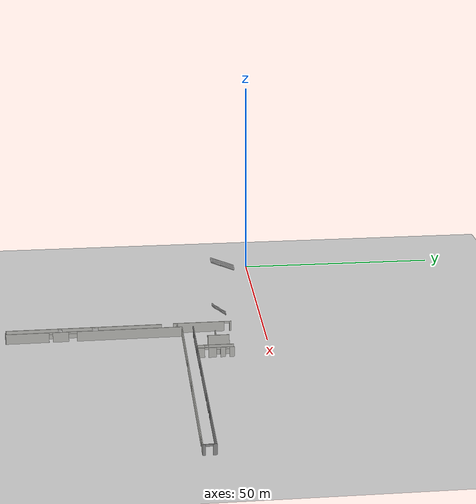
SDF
<sdf version="1.6">
 <world name="default">
  <model name="ground_plane">
   <static>1</static>
   <link name="link">
    <collision name="collision">
     <geometry><plane><normal>0 0 1</normal><size>100 100</size></plane></geometry>
     <surface><friction><ode><mu>100</mu><mu2>50</mu2></ode></friction></surface>
    </collision>
    <visual name="visual">
     <cast_shadows>0</cast_shadows>
     <geometry><plane><normal>0 0 1</normal><size>100 100</size></plane></geometry>
     <material>
      <script><uri>file://media/materials/scripts/gazebo.material</uri><name>Gazebo/Grey</name></script>
     </material>
    </visual>
   </link>
  </model>
  <model name="hospital_LG_detailed">
   <pose>51.8521 -11.413 0 0 -0 0</pose>
   <link name="Stairs_0">
    <visual name="Stairs_0_Visual_0">
     <pose>-51.7603 7.83355 0.083333 0 -0 0</pose>
     <geometry><box><size>3.86299 0.42395 0.166667</size></box></geometry>
     <material>
      <script><uri>file://media/materials/scripts/gazebo.material</uri><name>Gazebo/Grey</name></script>
      <ambient>1 1 1 1</ambient>
     </material>
     <meta><layer>0</layer></meta>
    </visual>
    <collision name="Stairs_0_Collision_0">
     <geometry><box><size>3.86299 0.42395 0.166667</size></box></geometry>
     <pose>-51.7603 7.83355 0.083333 0 -0 0</pose>
    </collision>
    <visual name="Stairs_0_Visual_1">
     <pose>-51.7603 7.4096 0.25 0 -0 0</pose>
     <geometry><box><size>3.86299 0.42395 0.166667</size></box></geometry>
     <material>
      <script><uri>file://media/materials/scripts/gazebo.material</uri><name>Gazebo/Grey</name></script>
      <ambient>1 1 1 1</ambient>
     </material>
     <meta><layer>0</layer></meta>
    </visual>
    <collision name="Stairs_0_Collision_1">
     <geometry><box><size>3.86299 0.42395 0.166667</size></box></geometry>
     <pose>-51.7603 7.4096 0.25 0 -0 0</pose>
    </collision>
    <visual name="Stairs_0_Visual_2">
     <pose>-51.7603 6.98565 0.416667 0 -0 0</pose>
     <geometry><box><size>3.86299 0.42395 0.166667</size></box></geometry>
     <material>
      <script><uri>file://media/materials/scripts/gazebo.material</uri><name>Gazebo/Grey</name></script>
      <ambient>1 1 1 1</ambient>
     </material>
     <meta><layer>0</layer></meta>
    </visual>
    <collision name="Stairs_0_Collision_2">
     <geometry><box><size>3.86299 0.42395 0.166667</size></box></geometry>
     <pose>-51.7603 6.98565 0.416667 0 -0 0</pose>
    </collision>
    <visual name="Stairs_0_Visual_3">
     <pose>-51.7603 6.5617 0.583333 0 -0 0</pose>
     <geometry><box><size>3.86299 0.42395 0.166667</size></box></geometry>
     <material>
      <script><uri>file://media/materials/scripts/gazebo.material</uri><name>Gazebo/Grey</name></script>
      <ambient>1 1 1 1</ambient>
     </material>
     <meta><layer>0</layer></meta>
    </visual>
    <collision name="Stairs_0_Collision_3">
     <geometry><box><size>3.86299 0.42395 0.166667</size></box></geometry>
     <pose>-51.7603 6.5617 0.583333 0 -0 0</pose>
    </collision>
    <visual name="Stairs_0_Visual_4">
     <pose>-51.7603 6.13775 0.75 0 -0 0</pose>
     <geometry><box><size>3.86299 0.42395 0.166667</size></box></geometry>
     <material>
      <script><uri>file://media/materials/scripts/gazebo.material</uri><name>Gazebo/Grey</name></script>
      <ambient>1 1 1 1</ambient>
     </material>
     <meta><layer>0</layer></meta>
    </visual>
    <collision name="Stairs_0_Collision_4">
     <geometry><box><size>3.86299 0.42395 0.166667</size></box></geometry>
     <pose>-51.7603 6.13775 0.75 0 -0 0</pose>
    </collision>
    <visual name="Stairs_0_Visual_5">
     <pose>-51.7603 5.7138 0.916667 0 -0 0</pose>
     <geometry><box><size>3.86299 0.42395 0.166667</size></box></geometry>
     <material>
      <script><uri>file://media/materials/scripts/gazebo.material</uri><name>Gazebo/Grey</name></script>
      <ambient>1 1 1 1</ambient>
     </material>
     <meta><layer>0</layer></meta>
    </visual>
    <collision name="Stairs_0_Collision_5">
     <geometry><box><size>3.86299 0.42395 0.166667</size></box></geometry>
     <pose>-51.7603 5.7138 0.916667 0 -0 0</pose>
    </collision>
    <visual name="Stairs_0_Visual_6">
     <pose>-51.7603 5.28985 1.08333 0 -0 0</pose>
     <geometry><box><size>3.86299 0.42395 0.166667</size></box></geometry>
     <material>
      <script><uri>file://media/materials/scripts/gazebo.material</uri><name>Gazebo/Grey</name></script>
      <ambient>1 1 1 1</ambient>
     </material>
     <meta><layer>0</layer></meta>
    </visual>
    <collision name="Stairs_0_Collision_6">
     <geometry><box><size>3.86299 0.42395 0.166667</size></box></geometry>
     <pose>-51.7603 5.28985 1.08333 0 -0 0</pose>
    </collision>
    <visual name="Stairs_0_Visual_7">
     <pose>-51.7603 4.8659 1.25 0 -0 0</pose>
     <geometry><box><size>3.86299 0.42395 0.166667</size></box></geometry>
     <material>
      <script><uri>file://media/materials/scripts/gazebo.material</uri><name>Gazebo/Grey</name></script>
      <ambient>1 1 1 1</ambient>
     </material>
     <meta><layer>0</layer></meta>
    </visual>
    <collision name="Stairs_0_Collision_7">
     <geometry><box><size>3.86299 0.42395 0.166667</size></box></geometry>
     <pose>-51.7603 4.8659 1.25 0 -0 0</pose>
    </collision>
    <visual name="Stairs_0_Visual_8">
     <pose>-51.7603 4.44195 1.41667 0 -0 0</pose>
     <geometry><box><size>3.86299 0.42395 0.166667</size></box></geometry>
     <material>
      <script><uri>file://media/materials/scripts/gazebo.material</uri><name>Gazebo/Grey</name></script>
      <ambient>1 1 1 1</ambient>
     </material>
     <meta><layer>0</layer></meta>
    </visual>
    <collision name="Stairs_0_Collision_8">
     <geometry><box><size>3.86299 0.42395 0.166667</size></box></geometry>
     <pose>-51.7603 4.44195 1.41667 0 -0 0</pose>
    </collision>
    <visual name="Stairs_0_Visual_9">
     <pose>-51.7603 4.018 1.58333 0 -0 0</pose>
     <geometry><box><size>3.86299 0.42395 0.166667</size></box></geometry>
     <material>
      <script><uri>file://media/materials/scripts/gazebo.material</uri><name>Gazebo/Grey</name></script>
      <ambient>1 1 1 1</ambient>
     </material>
     <meta><layer>0</layer></meta>
    </visual>
    <collision name="Stairs_0_Collision_9">
     <geometry><box><size>3.86299 0.42395 0.166667</size></box></geometry>
     <pose>-51.7603 4.018 1.58333 0 -0 0</pose>
    </collision>
    <visual name="Stairs_0_Visual_10">
     <pose>-51.7603 3.59405 1.75 0 -0 0</pose>
     <geometry><box><size>3.86299 0.42395 0.166667</size></box></geometry>
     <material>
      <script><uri>file://media/materials/scripts/gazebo.material</uri><name>Gazebo/Grey</name></script>
      <ambient>1 1 1 1</ambient>
     </material>
     <meta><layer>0</layer></meta>
    </visual>
    <collision name="Stairs_0_Collision_10">
     <geometry><box><size>3.86299 0.42395 0.166667</size></box></geometry>
     <pose>-51.7603 3.59405 1.75 0 -0 0</pose>
    </collision>
    <visual name="Stairs_0_Visual_11">
     <pose>-51.7603 3.1701 1.91667 0 -0 0</pose>
     <geometry><box><size>3.86299 0.42395 0.166667</size></box></geometry>
     <material>
      <script><uri>file://media/materials/scripts/gazebo.material</uri><name>Gazebo/Grey</name></script>
      <ambient>1 1 1 1</ambient>
     </material>
     <meta><layer>0</layer></meta>
    </visual>
    <collision name="Stairs_0_Collision_11">
     <geometry><box><size>3.86299 0.42395 0.166667</size></box></geometry>
     <pose>-51.7603 3.1701 1.91667 0 -0 0</pose>
    </collision>
    <visual name="Stairs_0_Visual_12">
     <pose>-51.7603 2.74615 2.08333 0 -0 0</pose>
     <geometry><box><size>3.86299 0.42395 0.166667</size></box></geometry>
     <material>
      <script><uri>file://media/materials/scripts/gazebo.material</uri><name>Gazebo/Grey</name></script>
      <ambient>1 1 1 1</ambient>
     </material>
     <meta><layer>0</layer></meta>
    </visual>
    <collision name="Stairs_0_Collision_12">
     <geometry><box><size>3.86299 0.42395 0.166667</size></box></geometry>
     <pose>-51.7603 2.74615 2.08333 0 -0 0</pose>
    </collision>
    <visual name="Stairs_0_Visual_13">
     <pose>-51.7603 2.3222 2.25 0 -0 0</pose>
     <geometry><box><size>3.86299 0.42395 0.166667</size></box></geometry>
     <material>
      <script><uri>file://media/materials/scripts/gazebo.material</uri><name>Gazebo/Grey</name></script>
      <ambient>1 1 1 1</ambient>
     </material>
     <meta><layer>0</layer></meta>
    </visual>
    <collision name="Stairs_0_Collision_13">
     <geometry><box><size>3.86299 0.42395 0.166667</size></box></geometry>
     <pose>-51.7603 2.3222 2.25 0 -0 0</pose>
    </collision>
    <visual name="Stairs_0_Visual_14">
     <pose>-51.7603 1.89825 2.41667 0 -0 0</pose>
     <geometry><box><size>3.86299 0.42395 0.166667</size></box></geometry>
     <material>
      <script><uri>file://media/materials/scripts/gazebo.material</uri><name>Gazebo/Grey</name></script>
      <ambient>1 1 1 1</ambient>
     </material>
     <meta><layer>0</layer></meta>
    </visual>
    <collision name="Stairs_0_Collision_14">
     <geometry><box><size>3.86299 0.42395 0.166667</size></box></geometry>
     <pose>-51.7603 1.89825 2.41667 0 -0 0</pose>
    </collision>
   </link>
   <link name="Stairs_1">
    <visual name="Stairs_1_Visual_0">
     <pose>-19.4385 2.82184 0.083333 0 -0 0</pose>
     <geometry><box><size>1.94936 0.233333 0.166667</size></box></geometry>
     <material>
      <script><uri>file://media/materials/scripts/gazebo.material</uri><name>Gazebo/Grey</name></script>
      <ambient>1 1 1 1</ambient>
     </material>
     <meta><layer>0</layer></meta>
    </visual>
    <collision name="Stairs_1_Collision_0">
     <geometry><box><size>1.94936 0.233333 0.166667</size></box></geometry>
     <pose>-19.4385 2.82184 0.083333 0 -0 0</pose>
    </collision>
    <visual name="Stairs_1_Visual_1">
     <pose>-19.4385 2.58851 0.25 0 -0 0</pose>
     <geometry><box><size>1.94936 0.233333 0.166667</size></box></geometry>
     <material>
      <script><uri>file://media/materials/scripts/gazebo.material</uri><name>Gazebo/Grey</name></script>
      <ambient>1 1 1 1</ambient>
     </material>
     <meta><layer>0</layer></meta>
    </visual>
    <collision name="Stairs_1_Collision_1">
     <geometry><box><size>1.94936 0.233333 0.166667</size></box></geometry>
     <pose>-19.4385 2.58851 0.25 0 -0 0</pose>
    </collision>
    <visual name="Stairs_1_Visual_2">
     <pose>-19.4385 2.35518 0.416667 0 -0 0</pose>
     <geometry><box><size>1.94936 0.233333 0.166667</size></box></geometry>
     <material>
      <script><uri>file://media/materials/scripts/gazebo.material</uri><name>Gazebo/Grey</name></script>
      <ambient>1 1 1 1</ambient>
     </material>
     <meta><layer>0</layer></meta>
    </visual>
    <collision name="Stairs_1_Collision_2">
     <geometry><box><size>1.94936 0.233333 0.166667</size></box></geometry>
     <pose>-19.4385 2.35518 0.416667 0 -0 0</pose>
    </collision>
    <visual name="Stairs_1_Visual_3">
     <pose>-19.4385 2.12184 0.583333 0 -0 0</pose>
     <geometry><box><size>1.94936 0.233333 0.166667</size></box></geometry>
     <material>
      <script><uri>file://media/materials/scripts/gazebo.material</uri><name>Gazebo/Grey</name></script>
      <ambient>1 1 1 1</ambient>
     </material>
     <meta><layer>0</layer></meta>
    </visual>
    <collision name="Stairs_1_Collision_3">
     <geometry><box><size>1.94936 0.233333 0.166667</size></box></geometry>
     <pose>-19.4385 2.12184 0.583333 0 -0 0</pose>
    </collision>
    <visual name="Stairs_1_Visual_4">
     <pose>-19.4385 1.88851 0.75 0 -0 0</pose>
     <geometry><box><size>1.94936 0.233333 0.166667</size></box></geometry>
     <material>
      <script><uri>file://media/materials/scripts/gazebo.material</uri><name>Gazebo/Grey</name></script>
      <ambient>1 1 1 1</ambient>
     </material>
     <meta><layer>0</layer></meta>
    </visual>
    <collision name="Stairs_1_Collision_4">
     <geometry><box><size>1.94936 0.233333 0.166667</size></box></geometry>
     <pose>-19.4385 1.88851 0.75 0 -0 0</pose>
    </collision>
    <visual name="Stairs_1_Visual_5">
     <pose>-19.4385 1.65518 0.916667 0 -0 0</pose>
     <geometry><box><size>1.94936 0.233333 0.166667</size></box></geometry>
     <material>
      <script><uri>file://media/materials/scripts/gazebo.material</uri><name>Gazebo/Grey</name></script>
      <ambient>1 1 1 1</ambient>
     </material>
     <meta><layer>0</layer></meta>
    </visual>
    <collision name="Stairs_1_Collision_5">
     <geometry><box><size>1.94936 0.233333 0.166667</size></box></geometry>
     <pose>-19.4385 1.65518 0.916667 0 -0 0</pose>
    </collision>
    <visual name="Stairs_1_Visual_6">
     <pose>-19.4385 1.42184 1.08333 0 -0 0</pose>
     <geometry><box><size>1.94936 0.233333 0.166667</size></box></geometry>
     <material>
      <script><uri>file://media/materials/scripts/gazebo.material</uri><name>Gazebo/Grey</name></script>
      <ambient>1 1 1 1</ambient>
     </material>
     <meta><layer>0</layer></meta>
    </visual>
    <collision name="Stairs_1_Collision_6">
     <geometry><box><size>1.94936 0.233333 0.166667</size></box></geometry>
     <pose>-19.4385 1.42184 1.08333 0 -0 0</pose>
    </collision>
    <visual name="Stairs_1_Visual_7">
     <pose>-19.4385 1.18851 1.25 0 -0 0</pose>
     <geometry><box><size>1.94936 0.233333 0.166667</size></box></geometry>
     <material>
      <script><uri>file://media/materials/scripts/gazebo.material</uri><name>Gazebo/Grey</name></script>
      <ambient>1 1 1 1</ambient>
     </material>
     <meta><layer>0</layer></meta>
    </visual>
    <collision name="Stairs_1_Collision_7">
     <geometry><box><size>1.94936 0.233333 0.166667</size></box></geometry>
     <pose>-19.4385 1.18851 1.25 0 -0 0</pose>
    </collision>
    <visual name="Stairs_1_Visual_8">
     <pose>-19.4385 0.955175 1.41667 0 -0 0</pose>
     <geometry><box><size>1.94936 0.233333 0.166667</size></box></geometry>
     <material>
      <script><uri>file://media/materials/scripts/gazebo.material</uri><name>Gazebo/Grey</name></script>
      <ambient>1 1 1 1</ambient>
     </material>
     <meta><layer>0</layer></meta>
    </visual>
    <collision name="Stairs_1_Collision_8">
     <geometry><box><size>1.94936 0.233333 0.166667</size></box></geometry>
     <pose>-19.4385 0.955175 1.41667 0 -0 0</pose>
    </collision>
    <visual name="Stairs_1_Visual_9">
     <pose>-19.4385 0.721842 1.58333 0 -0 0</pose>
     <geometry><box><size>1.94936 0.233333 0.166667</size></box></geometry>
     <material>
      <script><uri>file://media/materials/scripts/gazebo.material</uri><name>Gazebo/Grey</name></script>
      <ambient>1 1 1 1</ambient>
     </material>
     <meta><layer>0</layer></meta>
    </visual>
    <collision name="Stairs_1_Collision_9">
     <geometry><box><size>1.94936 0.233333 0.166667</size></box></geometry>
     <pose>-19.4385 0.721842 1.58333 0 -0 0</pose>
    </collision>
    <visual name="Stairs_1_Visual_10">
     <pose>-19.4385 0.488509 1.75 0 -0 0</pose>
     <geometry><box><size>1.94936 0.233333 0.166667</size></box></geometry>
     <material>
      <script><uri>file://media/materials/scripts/gazebo.material</uri><name>Gazebo/Grey</name></script>
      <ambient>1 1 1 1</ambient>
     </material>
     <meta><layer>0</layer></meta>
    </visual>
    <collision name="Stairs_1_Collision_10">
     <geometry><box><size>1.94936 0.233333 0.166667</size></box></geometry>
     <pose>-19.4385 0.488509 1.75 0 -0 0</pose>
    </collision>
    <visual name="Stairs_1_Visual_11">
     <pose>-19.4385 0.255176 1.91667 0 -0 0</pose>
     <geometry><box><size>1.94936 0.233333 0.166667</size></box></geometry>
     <material>
      <script><uri>file://media/materials/scripts/gazebo.material</uri><name>Gazebo/Grey</name></script>
      <ambient>1 1 1 1</ambient>
     </material>
     <meta><layer>0</layer></meta>
    </visual>
    <collision name="Stairs_1_Collision_11">
     <geometry><box><size>1.94936 0.233333 0.166667</size></box></geometry>
     <pose>-19.4385 0.255176 1.91667 0 -0 0</pose>
    </collision>
    <visual name="Stairs_1_Visual_12">
     <pose>-19.4385 0.021842 2.08333 0 -0 0</pose>
     <geometry><box><size>1.94936 0.233333 0.166667</size></box></geometry>
     <material>
      <script><uri>file://media/materials/scripts/gazebo.material</uri><name>Gazebo/Grey</name></script>
      <ambient>1 1 1 1</ambient>
     </material>
     <meta><layer>0</layer></meta>
    </visual>
    <collision name="Stairs_1_Collision_12">
     <geometry><box><size>1.94936 0.233333 0.166667</size></box></geometry>
     <pose>-19.4385 0.021842 2.08333 0 -0 0</pose>
    </collision>
    <visual name="Stairs_1_Visual_13">
     <pose>-19.4385 -0.211491 2.25 0 -0 0</pose>
     <geometry><box><size>1.94936 0.233333 0.166667</size></box></geometry>
     <material>
      <script><uri>file://media/materials/scripts/gazebo.material</uri><name>Gazebo/Grey</name></script>
      <ambient>1 1 1 1</ambient>
     </material>
     <meta><layer>0</layer></meta>
    </visual>
    <collision name="Stairs_1_Collision_13">
     <geometry><box><size>1.94936 0.233333 0.166667</size></box></geometry>
     <pose>-19.4385 -0.211491 2.25 0 -0 0</pose>
    </collision>
    <visual name="Stairs_1_Visual_14">
     <pose>-19.4385 -0.444824 2.41667 0 -0 0</pose>
     <geometry><box><size>1.94936 0.233333 0.166667</size></box></geometry>
     <material>
      <script><uri>file://media/materials/scripts/gazebo.material</uri><name>Gazebo/Grey</name></script>
      <ambient>1 1 1 1</ambient>
     </material>
     <meta><layer>0</layer></meta>
    </visual>
    <collision name="Stairs_1_Collision_14">
     <geometry><box><size>1.94936 0.233333 0.166667</size></box></geometry>
     <pose>-19.4385 -0.444824 2.41667 0 -0 0</pose>
    </collision>
   </link>
   <link name="Wall_24">
    <pose>24.123 -5.8189 0 0 -0 0.011089</pose>
    <visual name="Wall_24_Visual_0">
     <pose>-29.4346 0 1.25 0 -0 0</pose>
     <geometry><box><size>1.79536 0.15 2.5</size></box></geometry>
     <material>
      <script><uri>file://media/materials/scripts/gazebo.material</uri><name>Gazebo/Grey</name></script>
      <ambient>1 1 1 1</ambient>
     </material>
     <meta><layer>0</layer></meta>
    </visual>
    <collision name="Wall_24_Collision_0">
     <geometry><box><size>1.79536 0.15 2.5</size></box></geometry>
     <pose>-29.4346 0 1.25 0 -0 0</pose>
    </collision>
    <visual name="Wall_24_Visual_1">
     <pose>-22.8489 0 1.25 0 -0 0</pose>
     <geometry><box><size>8.29926 0.15 2.5</size></box></geometry>
     <material>
      <script><uri>file://media/materials/scripts/gazebo.material</uri><name>Gazebo/Grey</name></script>
      <ambient>1 1 1 1</ambient>
     </material>
     <meta><layer>0</layer></meta>
    </visual>
    <collision name="Wall_24_Collision_1">
     <geometry><box><size>8.29926 0.15 2.5</size></box></geometry>
     <pose>-22.8489 0 1.25 0 -0 0</pose>
    </collision>
    <visual name="Wall_24_Visual_2">
     <pose>-14.1199 0 1.25 0 -0 0</pose>
     <geometry><box><size>6.55203 0.15 2.5</size></box></geometry>
     <material>
      <script><uri>file://media/materials/scripts/gazebo.material</uri><name>Gazebo/Grey</name></script>
      <ambient>1 1 1 1</ambient>
     </material>
     <meta><layer>0</layer></meta>
    </visual>
    <collision name="Wall_24_Collision_2">
     <geometry><box><size>6.55203 0.15 2.5</size></box></geometry>
     <pose>-14.1199 0 1.25 0 -0 0</pose>
    </collision>
    <visual name="Wall_24_Visual_3">
     <pose>-8.19155 0 1.25 0 -0 0</pose>
     <geometry><box><size>2.4034 0.15 2.5</size></box></geometry>
     <material>
      <script><uri>file://media/materials/scripts/gazebo.material</uri><name>Gazebo/Grey</name></script>
      <ambient>1 1 1 1</ambient>
     </material>
     <meta><layer>0</layer></meta>
    </visual>
    <collision name="Wall_24_Collision_3">
     <geometry><box><size>2.4034 0.15 2.5</size></box></geometry>
     <pose>-8.19155 0 1.25 0 -0 0</pose>
    </collision>
    <visual name="Wall_24_Visual_4">
     <pose>-0.067553 0 1.25 0 -0 0</pose>
     <geometry><box><size>12.0446 0.15 2.5</size></box></geometry>
     <material>
      <script><uri>file://media/materials/scripts/gazebo.material</uri><name>Gazebo/Grey</name></script>
      <ambient>1 1 1 1</ambient>
     </material>
     <meta><layer>0</layer></meta>
    </visual>
    <collision name="Wall_24_Collision_4">
     <geometry><box><size>12.0446 0.15 2.5</size></box></geometry>
     <pose>-0.067553 0 1.25 0 -0 0</pose>
    </collision>
    <visual name="Wall_24_Visual_5">
     <pose>9.25356 0 1.25 0 -0 0</pose>
     <geometry><box><size>4.79765 0.15 2.5</size></box></geometry>
     <material>
      <script><uri>file://media/materials/scripts/gazebo.material</uri><name>Gazebo/Grey</name></script>
      <ambient>1 1 1 1</ambient>
     </material>
     <meta><layer>0</layer></meta>
    </visual>
    <collision name="Wall_24_Collision_5">
     <geometry><box><size>4.79765 0.15 2.5</size></box></geometry>
     <pose>9.25356 0 1.25 0 -0 0</pose>
    </collision>
    <visual name="Wall_24_Visual_6">
     <pose>14.0695 0 1.25 0 -0 0</pose>
     <geometry><box><size>1.6389 0.15 2.5</size></box></geometry>
     <material>
      <script><uri>file://media/materials/scripts/gazebo.material</uri><name>Gazebo/Grey</name></script>
      <ambient>1 1 1 1</ambient>
     </material>
     <meta><layer>0</layer></meta>
    </visual>
    <collision name="Wall_24_Collision_6">
     <geometry><box><size>1.6389 0.15 2.5</size></box></geometry>
     <pose>14.0695 0 1.25 0 -0 0</pose>
    </collision>
    <visual name="Wall_24_Visual_7">
     <pose>23.0606 0 1.25 0 -0 0</pose>
     <geometry><box><size>14.5433 0.15 2.5</size></box></geometry>
     <material>
      <script><uri>file://media/materials/scripts/gazebo.material</uri><name>Gazebo/Grey</name></script>
      <ambient>1 1 1 1</ambient>
     </material>
     <meta><layer>0</layer></meta>
    </visual>
    <collision name="Wall_24_Collision_7">
     <geometry><box><size>14.5433 0.15 2.5</size></box></geometry>
     <pose>23.0606 0 1.25 0 -0 0</pose>
    </collision>
    <visual name="Wall_24_Visual_8">
     <pose>-27.7677 0 2.25 0 -0 0</pose>
     <geometry><box><size>1.53841 0.15 0.5</size></box></geometry>
     <material>
      <script><uri>file://media/materials/scripts/gazebo.material</uri><name>Gazebo/Grey</name></script>
      <ambient>1 1 1 1</ambient>
     </material>
     <meta><layer>0</layer></meta>
    </visual>
    <collision name="Wall_24_Collision_8">
     <geometry><box><size>1.53841 0.15 0.5</size></box></geometry>
     <pose>-27.7677 0 2.25 0 -0 0</pose>
    </collision>
    <visual name="Wall_24_Visual_9">
     <pose>-18.0476 0 2.25 0 -0 0</pose>
     <geometry><box><size>1.30336 0.15 0.5</size></box></geometry>
     <material>
      <script><uri>file://media/materials/scripts/gazebo.material</uri><name>Gazebo/Grey</name></script>
      <ambient>1 1 1 1</ambient>
     </material>
     <meta><layer>0</layer></meta>
    </visual>
    <collision name="Wall_24_Collision_9">
     <geometry><box><size>1.30336 0.15 0.5</size></box></geometry>
     <pose>-18.0476 0 2.25 0 -0 0</pose>
    </collision>
    <visual name="Wall_24_Visual_10">
     <pose>-10.1186 0 2.25 0 -0 0</pose>
     <geometry><box><size>1.45062 0.15 0.5</size></box></geometry>
     <material>
      <script><uri>file://media/materials/scripts/gazebo.material</uri><name>Gazebo/Grey</name></script>
      <ambient>1 1 1 1</ambient>
     </material>
     <meta><layer>0</layer></meta>
    </visual>
    <collision name="Wall_24_Collision_10">
     <geometry><box><size>1.45062 0.15 0.5</size></box></geometry>
     <pose>-10.1186 0 2.25 0 -0 0</pose>
    </collision>
    <visual name="Wall_24_Visual_11">
     <pose>-6.53984 0 2.25 0 -0 0</pose>
     <geometry><box><size>0.9 0.15 0.5</size></box></geometry>
     <material>
      <script><uri>file://media/materials/scripts/gazebo.material</uri><name>Gazebo/Grey</name></script>
      <ambient>1 1 1 1</ambient>
     </material>
     <meta><layer>0</layer></meta>
    </visual>
    <collision name="Wall_24_Collision_11">
     <geometry><box><size>0.9 0.15 0.5</size></box></geometry>
     <pose>-6.53984 0 2.25 0 -0 0</pose>
    </collision>
    <visual name="Wall_24_Visual_12">
     <pose>6.40474 0 2.25 0 -0 0</pose>
     <geometry><box><size>0.9 0.15 0.5</size></box></geometry>
     <material>
      <script><uri>file://media/materials/scripts/gazebo.material</uri><name>Gazebo/Grey</name></script>
      <ambient>1 1 1 1</ambient>
     </material>
     <meta><layer>0</layer></meta>
    </visual>
    <collision name="Wall_24_Collision_12">
     <geometry><box><size>0.9 0.15 0.5</size></box></geometry>
     <pose>6.40474 0 2.25 0 -0 0</pose>
    </collision>
    <visual name="Wall_24_Visual_13">
     <pose>12.4512 0 2.25 0 -0 0</pose>
     <geometry><box><size>1.59769 0.15 0.5</size></box></geometry>
     <material>
      <script><uri>file://media/materials/scripts/gazebo.material</uri><name>Gazebo/Grey</name></script>
      <ambient>1 1 1 1</ambient>
     </material>
     <meta><layer>0</layer></meta>
    </visual>
    <collision name="Wall_24_Collision_13">
     <geometry><box><size>1.59769 0.15 0.5</size></box></geometry>
     <pose>12.4512 0 2.25 0 -0 0</pose>
    </collision>
    <visual name="Wall_24_Visual_14">
     <pose>15.339 0 2.25 0 -0 0</pose>
     <geometry><box><size>0.9 0.15 0.5</size></box></geometry>
     <material>
      <script><uri>file://media/materials/scripts/gazebo.material</uri><name>Gazebo/Grey</name></script>
      <ambient>1 1 1 1</ambient>
     </material>
     <meta><layer>0</layer></meta>
    </visual>
    <collision name="Wall_24_Collision_14">
     <geometry><box><size>0.9 0.15 0.5</size></box></geometry>
     <pose>15.339 0 2.25 0 -0 0</pose>
    </collision>
   </link>
   <link name="Wall_25">
    <pose>54.3891 -6.89767 0 0 -0 -1.56334</pose>
    <visual name="Wall_25_Visual_0">
     <pose>-1.08144 0 1.25 0 -0 0</pose>
     <geometry><box><size>0.858596 0.15 2.5</size></box></geometry>
     <material>
      <script><uri>file://media/materials/scripts/gazebo.material</uri><name>Gazebo/Grey</name></script>
      <ambient>1 1 1 1</ambient>
     </material>
     <meta><layer>0</layer></meta>
    </visual>
    <collision name="Wall_25_Collision_0">
     <geometry><box><size>0.858596 0.15 2.5</size></box></geometry>
     <pose>-1.08144 0 1.25 0 -0 0</pose>
    </collision>
    <visual name="Wall_25_Visual_1">
     <pose>1.20429 0 1.25 0 -0 0</pose>
     <geometry><box><size>0.612897 0.15 2.5</size></box></geometry>
     <material>
      <script><uri>file://media/materials/scripts/gazebo.material</uri><name>Gazebo/Grey</name></script>
      <ambient>1 1 1 1</ambient>
     </material>
     <meta><layer>0</layer></meta>
    </visual>
    <collision name="Wall_25_Collision_1">
     <geometry><box><size>0.612897 0.15 2.5</size></box></geometry>
     <pose>1.20429 0 1.25 0 -0 0</pose>
    </collision>
    <visual name="Wall_25_Visual_2">
     <pose>0.122849 0 2.25 0 -0 0</pose>
     <geometry><box><size>1.54999 0.15 0.5</size></box></geometry>
     <material>
      <script><uri>file://media/materials/scripts/gazebo.material</uri><name>Gazebo/Grey</name></script>
      <ambient>1 1 1 1</ambient>
     </material>
     <meta><layer>0</layer></meta>
    </visual>
    <collision name="Wall_25_Collision_2">
     <geometry><box><size>1.54999 0.15 0.5</size></box></geometry>
     <pose>0.122849 0 2.25 0 -0 0</pose>
    </collision>
   </link>
   <link name="Wall_26">
    <pose>24.0806 -8.6148 0 0 -0 -3.13271</pose>
    <visual name="Wall_26_Visual_0">
     <pose>-29.2846 0 1.25 0 -0 0</pose>
     <geometry><box><size>2.1972 0.15 2.5</size></box></geometry>
     <material>
      <script><uri>file://media/materials/scripts/gazebo.material</uri><name>Gazebo/CeilingTiled</name></script>
      <ambient>1 1 1 1</ambient>
     </material>
     <meta><layer>0</layer></meta>
    </visual>
    <collision name="Wall_26_Collision_0">
     <geometry><box><size>2.1972 0.15 2.5</size></box></geometry>
     <pose>-29.2846 0 1.25 0 -0 0</pose>
    </collision>
    <visual name="Wall_26_Visual_1">
     <pose>-14.157 0 1.25 0 -0 0</pose>
     <geometry><box><size>24.8016 0.15 2.5</size></box></geometry>
     <material>
      <script><uri>file://media/materials/scripts/gazebo.material</uri><name>Gazebo/CeilingTiled</name></script>
      <ambient>1 1 1 1</ambient>
     </material>
     <meta><layer>0</layer></meta>
    </visual>
    <collision name="Wall_26_Collision_1">
     <geometry><box><size>24.8016 0.15 2.5</size></box></geometry>
     <pose>-14.157 0 1.25 0 -0 0</pose>
    </collision>
    <visual name="Wall_26_Visual_2">
     <pose>4.97012 0 1.25 0 -0 0</pose>
     <geometry><box><size>11.6527 0.15 2.5</size></box></geometry>
     <material>
      <script><uri>file://media/materials/scripts/gazebo.material</uri><name>Gazebo/CeilingTiled</name></script>
      <ambient>1 1 1 1</ambient>
     </material>
     <meta><layer>0</layer></meta>
    </visual>
    <collision name="Wall_26_Collision_2">
     <geometry><box><size>11.6527 0.15 2.5</size></box></geometry>
     <pose>4.97012 0 1.25 0 -0 0</pose>
    </collision>
    <visual name="Wall_26_Visual_3">
     <pose>21.3518 0 1.25 0 -0 0</pose>
     <geometry><box><size>18.0627 0.15 2.5</size></box></geometry>
     <material>
      <script><uri>file://media/materials/scripts/gazebo.material</uri><name>Gazebo/CeilingTiled</name></script>
      <ambient>1 1 1 1</ambient>
     </material>
     <meta><layer>0</layer></meta>
    </visual>
    <collision name="Wall_26_Collision_3">
     <geometry><box><size>18.0627 0.15 2.5</size></box></geometry>
     <pose>21.3518 0 1.25 0 -0 0</pose>
    </collision>
    <visual name="Wall_26_Visual_4">
     <pose>-27.3719 0 2.25 0 -0 0</pose>
     <geometry><box><size>1.62818 0.15 0.5</size></box></geometry>
     <material>
      <script><uri>file://media/materials/scripts/gazebo.material</uri><name>Gazebo/CeilingTiled</name></script>
      <ambient>1 1 1 1</ambient>
     </material>
     <meta><layer>0</layer></meta>
    </visual>
    <collision name="Wall_26_Collision_4">
     <geometry><box><size>1.62818 0.15 0.5</size></box></geometry>
     <pose>-27.3719 0 2.25 0 -0 0</pose>
    </collision>
    <visual name="Wall_26_Visual_5">
     <pose>-1.30621 0 2.25 0 -0 0</pose>
     <geometry><box><size>0.9 0.15 0.5</size></box></geometry>
     <material>
      <script><uri>file://media/materials/scripts/gazebo.material</uri><name>Gazebo/CeilingTiled</name></script>
      <ambient>1 1 1 1</ambient>
     </material>
     <meta><layer>0</layer></meta>
    </visual>
    <collision name="Wall_26_Collision_5">
     <geometry><box><size>0.9 0.15 0.5</size></box></geometry>
     <pose>-1.30621 0 2.25 0 -0 0</pose>
    </collision>
    <visual name="Wall_26_Visual_6">
     <pose>11.5585 0 2.25 0 -0 0</pose>
     <geometry><box><size>1.52404 0.15 0.5</size></box></geometry>
     <material>
      <script><uri>file://media/materials/scripts/gazebo.material</uri><name>Gazebo/CeilingTiled</name></script>
      <ambient>1 1 1 1</ambient>
     </material>
     <meta><layer>0</layer></meta>
    </visual>
    <collision name="Wall_26_Collision_6">
     <geometry><box><size>1.52404 0.15 0.5</size></box></geometry>
     <pose>11.5585 0 2.25 0 -0 0</pose>
    </collision>
   </link>
   <link name="Wall_30">
    <pose>-8.48123 -3.81735 0 0 -0 -1.56509</pose>
    <visual name="Wall_30_Visual_0">
     <pose>-6.86523 0 1.25 0 -0 0</pose>
     <geometry><box><size>0.385466 0.15 2.5</size></box></geometry>
     <material>
      <script><uri>file://media/materials/scripts/gazebo.material</uri><name>Gazebo/CeilingTiled</name></script>
      <ambient>1 1 1 1</ambient>
     </material>
     <meta><layer>0</layer></meta>
    </visual>
    <collision name="Wall_30_Collision_0">
     <geometry><box><size>0.385466 0.15 2.5</size></box></geometry>
     <pose>-6.86523 0 1.25 0 -0 0</pose>
    </collision>
    <visual name="Wall_30_Visual_1">
     <pose>0.827792 0 1.25 0 -0 0</pose>
     <geometry><box><size>12.4603 0.15 2.5</size></box></geometry>
     <material>
      <script><uri>file://media/materials/scripts/gazebo.material</uri><name>Gazebo/CeilingTiled</name></script>
      <ambient>1 1 1 1</ambient>
     </material>
     <meta><layer>0</layer></meta>
    </visual>
    <collision name="Wall_30_Collision_1">
     <geometry><box><size>12.4603 0.15 2.5</size></box></geometry>
     <pose>0.827792 0 1.25 0 -0 0</pose>
    </collision>
    <visual name="Wall_30_Visual_2">
     <pose>-6.03744 0 2.25 0 -0 0</pose>
     <geometry><box><size>1.27012 0.15 0.5</size></box></geometry>
     <material>
      <script><uri>file://media/materials/scripts/gazebo.material</uri><name>Gazebo/CeilingTiled</name></script>
      <ambient>1 1 1 1</ambient>
     </material>
     <meta><layer>0</layer></meta>
    </visual>
    <collision name="Wall_30_Collision_2">
     <geometry><box><size>1.27012 0.15 0.5</size></box></geometry>
     <pose>-6.03744 0 2.25 0 -0 0</pose>
    </collision>
   </link>
   <link name="Wall_37">
    <pose>-8.06636 -32.3868 0 0 -0 -1.56077</pose>
    <visual name="Wall_37_Visual_0">
     <pose>-11.0425 0 1.25 0 -0 0</pose>
     <geometry><box><size>15.3679 0.15 2.5</size></box></geometry>
     <material>
      <script><uri>file://media/materials/scripts/gazebo.material</uri><name>Gazebo/CeilingTiled</name></script>
      <ambient>1 1 1 1</ambient>
     </material>
     <meta><layer>0</layer></meta>
    </visual>
    <collision name="Wall_37_Collision_0">
     <geometry><box><size>15.3679 0.15 2.5</size></box></geometry>
     <pose>-11.0425 0 1.25 0 -0 0</pose>
    </collision>
    <visual name="Wall_37_Visual_1">
     <pose>1.7377 0 1.25 0 -0 0</pose>
     <geometry><box><size>7.21836 0.15 2.5</size></box></geometry>
     <material>
      <script><uri>file://media/materials/scripts/gazebo.material</uri><name>Gazebo/CeilingTiled</name></script>
      <ambient>1 1 1 1</ambient>
     </material>
     <meta><layer>0</layer></meta>
    </visual>
    <collision name="Wall_37_Collision_1">
     <geometry><box><size>7.21836 0.15 2.5</size></box></geometry>
     <pose>1.7377 0 1.25 0 -0 0</pose>
    </collision>
    <visual name="Wall_37_Visual_2">
     <pose>12.4866 0 1.25 0 -0 0</pose>
     <geometry><box><size>12.4795 0.15 2.5</size></box></geometry>
     <material>
      <script><uri>file://media/materials/scripts/gazebo.material</uri><name>Gazebo/CeilingTiled</name></script>
      <ambient>1 1 1 1</ambient>
     </material>
     <meta><layer>0</layer></meta>
    </visual>
    <collision name="Wall_37_Collision_2">
     <geometry><box><size>12.4795 0.15 2.5</size></box></geometry>
     <pose>12.4866 0 1.25 0 -0 0</pose>
    </collision>
    <visual name="Wall_37_Visual_3">
     <pose>-2.61501 0 2.25 0 -0 0</pose>
     <geometry><box><size>1.48706 0.15 0.5</size></box></geometry>
     <material>
      <script><uri>file://media/materials/scripts/gazebo.material</uri><name>Gazebo/CeilingTiled</name></script>
      <ambient>1 1 1 1</ambient>
     </material>
     <meta><layer>0</layer></meta>
    </visual>
    <collision name="Wall_37_Collision_3">
     <geometry><box><size>1.48706 0.15 0.5</size></box></geometry>
     <pose>-2.61501 0 2.25 0 -0 0</pose>
    </collision>
    <visual name="Wall_37_Visual_4">
     <pose>5.79688 0 2.25 0 -0 0</pose>
     <geometry><box><size>0.9 0.15 0.5</size></box></geometry>
     <material>
      <script><uri>file://media/materials/scripts/gazebo.material</uri><name>Gazebo/CeilingTiled</name></script>
      <ambient>1 1 1 1</ambient>
     </material>
     <meta><layer>0</layer></meta>
    </visual>
    <collision name="Wall_37_Collision_4">
     <geometry><box><size>0.9 0.15 0.5</size></box></geometry>
     <pose>5.79688 0 2.25 0 -0 0</pose>
    </collision>
   </link>
   <link name="Wall_38">
    <pose>-6.81712 -51.037 0 0 -0 0</pose>
    <visual name="Wall_38_Visual_0">
     <pose>-0.919795 0 1.25 0 -0 0</pose>
     <geometry><box><size>0.410411 0.15 2.5</size></box></geometry>
     <material>
      <script><uri>file://media/materials/scripts/gazebo.material</uri><name>Gazebo/Grey</name></script>
      <ambient>1 1 1 1</ambient>
     </material>
     <meta><layer>0</layer></meta>
    </visual>
    <collision name="Wall_38_Collision_0">
     <geometry><box><size>0.410411 0.15 2.5</size></box></geometry>
     <pose>-0.919795 0 1.25 0 -0 0</pose>
    </collision>
    <visual name="Wall_38_Visual_1">
     <pose>0.961108 0 1.25 0 -0 0</pose>
     <geometry><box><size>0.327785 0.15 2.5</size></box></geometry>
     <material>
      <script><uri>file://media/materials/scripts/gazebo.material</uri><name>Gazebo/Grey</name></script>
      <ambient>1 1 1 1</ambient>
     </material>
     <meta><layer>0</layer></meta>
    </visual>
    <collision name="Wall_38_Collision_1">
     <geometry><box><size>0.327785 0.15 2.5</size></box></geometry>
     <pose>0.961108 0 1.25 0 -0 0</pose>
    </collision>
    <visual name="Wall_38_Visual_2">
     <pose>0.041313 0 2.25 0 -0 0</pose>
     <geometry><box><size>1.51181 0.15 0.5</size></box></geometry>
     <material>
      <script><uri>file://media/materials/scripts/gazebo.material</uri><name>Gazebo/Grey</name></script>
      <ambient>1 1 1 1</ambient>
     </material>
     <meta><layer>0</layer></meta>
    </visual>
    <collision name="Wall_38_Collision_2">
     <geometry><box><size>1.51181 0.15 0.5</size></box></geometry>
     <pose>0.041313 0 2.25 0 -0 0</pose>
    </collision>
   </link>
   <link name="Wall_39">
    <pose>-6.00762 -29.9708 0 0 -0 1.58163</pose>
    <visual name="Wall_39_Visual_0">
     <pose>-15.9638 0 1.25 0 -0 0</pose>
     <geometry><box><size>10.3575 0.15 2.5</size></box></geometry>
     <material>
      <script><uri>file://media/materials/scripts/gazebo.material</uri><name>Gazebo/CeilingTiled</name></script>
      <ambient>1 1 1 1</ambient>
     </material>
     <meta><layer>0</layer></meta>
    </visual>
    <collision name="Wall_39_Collision_0">
     <geometry><box><size>10.3575 0.15 2.5</size></box></geometry>
     <pose>-15.9638 0 1.25 0 -0 0</pose>
    </collision>
    <visual name="Wall_39_Visual_1">
     <pose>-8.00216 0 1.25 0 -0 0</pose>
     <geometry><box><size>3.76586 0.15 2.5</size></box></geometry>
     <material>
      <script><uri>file://media/materials/scripts/gazebo.material</uri><name>Gazebo/CeilingTiled</name></script>
      <ambient>1 1 1 1</ambient>
     </material>
     <meta><layer>0</layer></meta>
    </visual>
    <collision name="Wall_39_Collision_1">
     <geometry><box><size>3.76586 0.15 2.5</size></box></geometry>
     <pose>-8.00216 0 1.25 0 -0 0</pose>
    </collision>
    <visual name="Wall_39_Visual_2">
     <pose>8.51152 0 1.25 0 -0 0</pose>
     <geometry><box><size>25.2621 0.15 2.5</size></box></geometry>
     <material>
      <script><uri>file://media/materials/scripts/gazebo.material</uri><name>Gazebo/CeilingTiled</name></script>
      <ambient>1 1 1 1</ambient>
     </material>
     <meta><layer>0</layer></meta>
    </visual>
    <collision name="Wall_39_Collision_2">
     <geometry><box><size>25.2621 0.15 2.5</size></box></geometry>
     <pose>8.51152 0 1.25 0 -0 0</pose>
    </collision>
    <visual name="Wall_39_Visual_3">
     <pose>-10.3351 0 2.25 0 -0 0</pose>
     <geometry><box><size>0.9 0.15 0.5</size></box></geometry>
     <material>
      <script><uri>file://media/materials/scripts/gazebo.material</uri><name>Gazebo/CeilingTiled</name></script>
      <ambient>1 1 1 1</ambient>
     </material>
     <meta><layer>0</layer></meta>
    </visual>
    <collision name="Wall_39_Collision_3">
     <geometry><box><size>0.9 0.15 0.5</size></box></geometry>
     <pose>-10.3351 0 2.25 0 -0 0</pose>
    </collision>
    <visual name="Wall_39_Visual_4">
     <pose>-5.11937 0 2.25 0 -0 0</pose>
     <geometry><box><size>1.99972 0.15 0.5</size></box></geometry>
     <material>
      <script><uri>file://media/materials/scripts/gazebo.material</uri><name>Gazebo/CeilingTiled</name></script>
      <ambient>1 1 1 1</ambient>
     </material>
     <meta><layer>0</layer></meta>
    </visual>
    <collision name="Wall_39_Collision_4">
     <geometry><box><size>1.99972 0.15 0.5</size></box></geometry>
     <pose>-5.11937 0 2.25 0 -0 0</pose>
    </collision>
   </link>
   <link name="Wall_59">
    <pose>-7.38419 -9.95569 0 0 -0 0</pose>
    <visual name="Wall_59_Visual_0">
     <pose>-0.917225 0 1.25 0 -0 0</pose>
     <geometry><box><size>0.41555 0.15 2.5</size></box></geometry>
     <material>
      <script><uri>file://media/materials/scripts/gazebo.material</uri><name>Gazebo/CeilingTiled</name></script>
      <ambient>1 1 1 1</ambient>
     </material>
     <meta><layer>0</layer></meta>
    </visual>
    <collision name="Wall_59_Collision_0">
     <geometry><box><size>0.41555 0.15 2.5</size></box></geometry>
     <pose>-0.917225 0 1.25 0 -0 0</pose>
    </collision>
    <visual name="Wall_59_Visual_1">
     <pose>1.01807 0 1.25 0 -0 0</pose>
     <geometry><box><size>0.213859 0.15 2.5</size></box></geometry>
     <material>
      <script><uri>file://media/materials/scripts/gazebo.material</uri><name>Gazebo/CeilingTiled</name></script>
      <ambient>1 1 1 1</ambient>
     </material>
     <meta><layer>0</layer></meta>
    </visual>
    <collision name="Wall_59_Collision_1">
     <geometry><box><size>0.213859 0.15 2.5</size></box></geometry>
     <pose>1.01807 0 1.25 0 -0 0</pose>
    </collision>
    <visual name="Wall_59_Visual_2">
     <pose>0.100845 0 2.25 0 -0 0</pose>
     <geometry><box><size>1.62059 0.15 0.5</size></box></geometry>
     <material>
      <script><uri>file://media/materials/scripts/gazebo.material</uri><name>Gazebo/CeilingTiled</name></script>
      <ambient>1 1 1 1</ambient>
     </material>
     <meta><layer>0</layer></meta>
    </visual>
    <collision name="Wall_59_Collision_2">
     <geometry><box><size>1.62059 0.15 0.5</size></box></geometry>
     <pose>0.100845 0 2.25 0 -0 0</pose>
    </collision>
   </link>
   <link name="Wall_87">
    <collision name="Wall_87_Collision">
     <geometry><box><size>5.25 0.15 2.5</size></box></geometry>
     <pose>0 0 1.25 0 -0 0</pose>
    </collision>
    <visual name="Wall_87_Visual">
     <pose>0 0 1.25 0 -0 0</pose>
     <geometry><box><size>5.25 0.15 2.5</size></box></geometry>
     <material>
      <script><uri>file://media/materials/scripts/gazebo.material</uri><name>Gazebo/CeilingTiled</name></script>
      <ambient>1 1 1 1</ambient>
     </material>
     <meta><layer>0</layer></meta>
    </visual>
    <pose>-0.358221 -0.530218 0 0 -0 -1.5708</pose>
   </link>
   <link name="Wall_88">
    <collision name="Wall_88_Collision">
     <geometry><box><size>0.75 0.15 2.5</size></box></geometry>
     <pose>0 0 1.25 0 -0 0</pose>
    </collision>
    <visual name="Wall_88_Visual">
     <pose>0 0 1.25 0 -0 0</pose>
     <geometry><box><size>0.75 0.15 2.5</size></box></geometry>
     <material>
      <script><uri>file://media/materials/scripts/gazebo.material</uri><name>Gazebo/CeilingTiled</name></script>
      <ambient>1 1 1 1</ambient>
     </material>
     <meta><layer>0</layer></meta>
    </visual>
    <pose>-0.058222 -3.08022 0 0 -0 0</pose>
   </link>
   <link name="Wall_90">
    <collision name="Wall_90_Collision">
     <geometry><box><size>3 0.15 2.5</size></box></geometry>
     <pose>0 0 1.25 0 -0 0</pose>
    </collision>
    <visual name="Wall_90_Visual">
     <pose>0 0 1.25 0 -0 0</pose>
     <geometry><box><size>3 0.15 2.5</size></box></geometry>
     <material>
      <script><uri>file://media/materials/scripts/gazebo.material</uri><name>Gazebo/CeilingTiled</name></script>
      <ambient>1 1 1 1</ambient>
     </material>
     <meta><layer>0</layer></meta>
    </visual>
    <pose>-1.80986 -1.07499 0 0 -0 3.14159</pose>
   </link>
   <link name="Wall_92">
    <pose>5.21927 -1.75508 0 0 -0 1.5708</pose>
    <visual name="Wall_92_Visual_0">
     <pose>-3.41843 0 1.25 0 -0 0</pose>
     <geometry><box><size>1.91315 0.15 2.5</size></box></geometry>
     <material>
      <script><uri>file://media/materials/scripts/gazebo.material</uri><name>Gazebo/CeilingTiled</name></script>
      <ambient>1 1 1 1</ambient>
     </material>
     <meta><layer>0</layer></meta>
    </visual>
    <collision name="Wall_92_Collision_0">
     <geometry><box><size>1.91315 0.15 2.5</size></box></geometry>
     <pose>-3.41843 0 1.25 0 -0 0</pose>
    </collision>
    <visual name="Wall_92_Visual_1">
     <pose>1.40657 0 1.25 0 -0 0</pose>
     <geometry><box><size>5.93685 0.15 2.5</size></box></geometry>
     <material>
      <script><uri>file://media/materials/scripts/gazebo.material</uri><name>Gazebo/CeilingTiled</name></script>
      <ambient>1 1 1 1</ambient>
     </material>
     <meta><layer>0</layer></meta>
    </visual>
    <collision name="Wall_92_Collision_1">
     <geometry><box><size>5.93685 0.15 2.5</size></box></geometry>
     <pose>1.40657 0 1.25 0 -0 0</pose>
    </collision>
    <visual name="Wall_92_Visual_2">
     <pose>-2.01185 0 2.25 0 -0 0</pose>
     <geometry><box><size>0.9 0.15 0.5</size></box></geometry>
     <material>
      <script><uri>file://media/materials/scripts/gazebo.material</uri><name>Gazebo/CeilingTiled</name></script>
      <ambient>1 1 1 1</ambient>
     </material>
     <meta><layer>0</layer></meta>
    </visual>
    <collision name="Wall_92_Collision_2">
     <geometry><box><size>0.9 0.15 0.5</size></box></geometry>
     <pose>-2.01185 0 2.25 0 -0 0</pose>
    </collision>
   </link>
   <link name="Wall_94">
    <pose>6.81926 -1.75508 0 0 -0 -1.5708</pose>
    <visual name="Wall_94_Visual_0">
     <pose>-3.79873 0 1.25 0 -0 0</pose>
     <geometry><box><size>1.15254 0.15 2.5</size></box></geometry>
     <material>
      <script><uri>file://media/materials/scripts/gazebo.material</uri><name>Gazebo/CeilingTiled</name></script>
      <ambient>1 1 1 1</ambient>
     </material>
     <meta><layer>0</layer></meta>
    </visual>
    <collision name="Wall_94_Collision_0">
     <geometry><box><size>1.15254 0.15 2.5</size></box></geometry>
     <pose>-3.79873 0 1.25 0 -0 0</pose>
    </collision>
    <visual name="Wall_94_Visual_1">
     <pose>-1.7018 0 1.25 0 -0 0</pose>
     <geometry><box><size>1.24132 0.15 2.5</size></box></geometry>
     <material>
      <script><uri>file://media/materials/scripts/gazebo.material</uri><name>Gazebo/CeilingTiled</name></script>
      <ambient>1 1 1 1</ambient>
     </material>
     <meta><layer>0</layer></meta>
    </visual>
    <collision name="Wall_94_Collision_1">
     <geometry><box><size>1.24132 0.15 2.5</size></box></geometry>
     <pose>-1.7018 0 1.25 0 -0 0</pose>
    </collision>
    <visual name="Wall_94_Visual_2">
     <pose>0.745415 0 1.25 0 -0 0</pose>
     <geometry><box><size>1.85312 0.15 2.5</size></box></geometry>
     <material>
      <script><uri>file://media/materials/scripts/gazebo.material</uri><name>Gazebo/CeilingTiled</name></script>
      <ambient>1 1 1 1</ambient>
     </material>
     <meta><layer>0</layer></meta>
    </visual>
    <collision name="Wall_94_Collision_2">
     <geometry><box><size>1.85312 0.15 2.5</size></box></geometry>
     <pose>0.745415 0 1.25 0 -0 0</pose>
    </collision>
    <visual name="Wall_94_Visual_3">
     <pose>3.47349 0 1.25 0 -0 0</pose>
     <geometry><box><size>1.80302 0.15 2.5</size></box></geometry>
     <material>
      <script><uri>file://media/materials/scripts/gazebo.material</uri><name>Gazebo/CeilingTiled</name></script>
      <ambient>1 1 1 1</ambient>
     </material>
     <meta><layer>0</layer></meta>
    </visual>
    <collision name="Wall_94_Collision_3">
     <geometry><box><size>1.80302 0.15 2.5</size></box></geometry>
     <pose>3.47349 0 1.25 0 -0 0</pose>
    </collision>
    <visual name="Wall_94_Visual_4">
     <pose>-2.77246 0 2.25 0 -0 0</pose>
     <geometry><box><size>0.9 0.15 0.5</size></box></geometry>
     <material>
      <script><uri>file://media/materials/scripts/gazebo.material</uri><name>Gazebo/CeilingTiled</name></script>
      <ambient>1 1 1 1</ambient>
     </material>
     <meta><layer>0</layer></meta>
    </visual>
    <collision name="Wall_94_Collision_4">
     <geometry><box><size>0.9 0.15 0.5</size></box></geometry>
     <pose>-2.77246 0 2.25 0 -0 0</pose>
    </collision>
    <visual name="Wall_94_Visual_5">
     <pose>-0.631145 0 2.25 0 -0 0</pose>
     <geometry><box><size>0.9 0.15 0.5</size></box></geometry>
     <material>
      <script><uri>file://media/materials/scripts/gazebo.material</uri><name>Gazebo/CeilingTiled</name></script>
      <ambient>1 1 1 1</ambient>
     </material>
     <meta><layer>0</layer></meta>
    </visual>
    <collision name="Wall_94_Collision_5">
     <geometry><box><size>0.9 0.15 0.5</size></box></geometry>
     <pose>-0.631145 0 2.25 0 -0 0</pose>
    </collision>
    <visual name="Wall_94_Visual_6">
     <pose>2.12198 0 2.25 0 -0 0</pose>
     <geometry><box><size>0.9 0.15 0.5</size></box></geometry>
     <material>
      <script><uri>file://media/materials/scripts/gazebo.material</uri><name>Gazebo/CeilingTiled</name></script>
      <ambient>1 1 1 1</ambient>
     </material>
     <meta><layer>0</layer></meta>
    </visual>
    <collision name="Wall_94_Collision_6">
     <geometry><box><size>0.9 0.15 0.5</size></box></geometry>
     <pose>2.12198 0 2.25 0 -0 0</pose>
    </collision>
   </link>
   <static>1</static>
  </model>
 </world>
</sdf>
